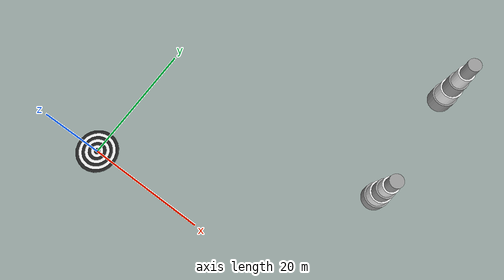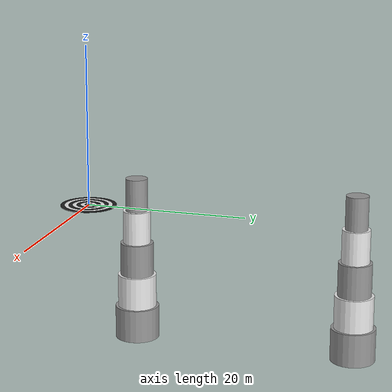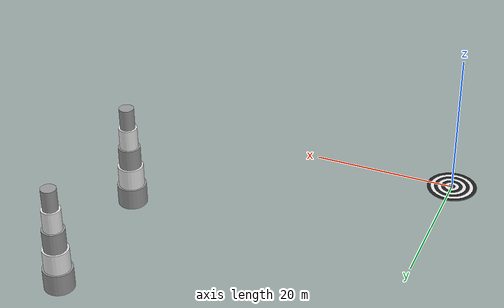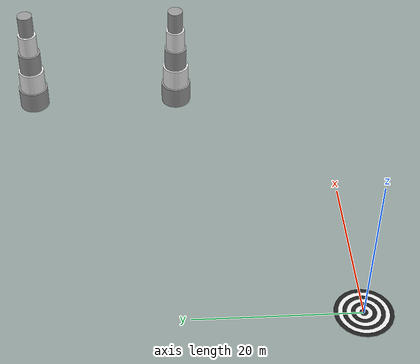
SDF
<sdf version="1.4">
 <world name="fw_playground">
  <model name="bulls_eye">
   <static>true</static>
   <link name="link">
    <visual name="bulls_eye_r1">
     <cast_shadows>false</cast_shadows>
     <geometry><cylinder><radius>0.5</radius><length>0.12</length></cylinder></geometry>
     <material>
      <script><uri>file://media/materials/scripts/gazebo.material</uri><name>Gazebo/Black</name></script>
     </material>
    </visual>
    <visual name="bulls_eye_r2">
     <cast_shadows>false</cast_shadows>
     <geometry><cylinder><radius>1</radius><length>0.11</length></cylinder></geometry>
     <material>
      <script><uri>file://media/materials/scripts/gazebo.material</uri><name>Gazebo/White</name></script>
     </material>
    </visual>
    <visual name="bulls_eye_r3">
     <cast_shadows>false</cast_shadows>
     <geometry><cylinder><radius>1.5</radius><length>0.1</length></cylinder></geometry>
     <material>
      <script><uri>file://media/materials/scripts/gazebo.material</uri><name>Gazebo/Black</name></script>
     </material>
    </visual>
    <visual name="bulls_eye_r4">
     <cast_shadows>false</cast_shadows>
     <geometry><cylinder><radius>2</radius><length>0.09</length></cylinder></geometry>
     <material>
      <script><uri>file://media/materials/scripts/gazebo.material</uri><name>Gazebo/White</name></script>
     </material>
    </visual>
    <visual name="bulls_eye_r5">
     <cast_shadows>false</cast_shadows>
     <geometry><cylinder><radius>2.5</radius><length>0.08</length></cylinder></geometry>
     <material>
      <script><uri>file://media/materials/scripts/gazebo.material</uri><name>Gazebo/Black</name></script>
     </material>
    </visual>
    <visual name="bulls_eye_r6">
     <cast_shadows>false</cast_shadows>
     <geometry><cylinder><radius>3</radius><length>0.07</length></cylinder></geometry>
     <material>
      <script><uri>file://media/materials/scripts/gazebo.material</uri><name>Gazebo/White</name></script>
     </material>
    </visual>
    <visual name="bulls_eye_r7">
     <cast_shadows>false</cast_shadows>
     <geometry><cylinder><radius>3.5</radius><length>0.06</length></cylinder></geometry>
     <material>
      <script><uri>file://media/materials/scripts/gazebo.material</uri><name>Gazebo/Black</name></script>
     </material>
    </visual>
   </link>
  </model>
  <model name="pylon3">
   <static>true</static>
   <link name="pylon">
    <pose>40 20 0 0 0 0</pose>
    <visual name="v1">
     <pose>0 0 1.5 0 0 0</pose>
     <geometry><cylinder><radius>2</radius><length>3</length></cylinder></geometry>
     <material>
      <script><uri>file://media/materials/scripts/gazebo.material</uri><name>Gazebo/Grey</name></script>
     </material>
    </visual>
    <collision name="c1">
     <pose>0 0 1.5 0 0 0</pose>
     <geometry><cylinder><radius>2</radius><length>3</length></cylinder></geometry>
    </collision>
    <visual name="v2">
     <pose>0 0 4.5 0 0 0</pose>
     <geometry><cylinder><radius>1.75</radius><length>3</length></cylinder></geometry>
     <material>
      <script><uri>file://media/materials/scripts/gazebo.material</uri><name>Gazebo/White</name></script>
     </material>
    </visual>
    <collision name="c2">
     <pose>0 0 4.5 0 0 0</pose>
     <geometry><cylinder><radius>1.75</radius><length>3</length></cylinder></geometry>
    </collision>
    <visual name="v3">
     <pose>0 0 7.5 0 0 0</pose>
     <geometry><cylinder><radius>1.5</radius><length>3</length></cylinder></geometry>
     <material>
      <script><uri>file://media/materials/scripts/gazebo.material</uri><name>Gazebo/Grey</name></script>
     </material>
    </visual>
    <collision name="c3">
     <pose>0 0 7.5 0 0 0</pose>
     <geometry><cylinder><radius>1.5</radius><length>3</length></cylinder></geometry>
    </collision>
    <visual name="v4">
     <pose>0 0 10.5 0 0 0</pose>
     <geometry><cylinder><radius>1.25</radius><length>3</length></cylinder></geometry>
     <material>
      <script><uri>file://media/materials/scripts/gazebo.material</uri><name>Gazebo/White</name></script>
     </material>
    </visual>
    <collision name="c4">
     <pose>0 0 10.5 0 0 0</pose>
     <geometry><cylinder><radius>1.25</radius><length>3</length></cylinder></geometry>
    </collision>
    <visual name="v5">
     <pose>0 0 13.5 0 0 0</pose>
     <geometry><cylinder><radius>1</radius><length>3</length></cylinder></geometry>
     <material>
      <script><uri>file://media/materials/scripts/gazebo.material</uri><name>Gazebo/Grey</name></script>
     </material>
    </visual>
    <collision name="c5">
     <pose>0 0 13.5 0 0 0</pose>
     <geometry><cylinder><radius>1</radius><length>3</length></cylinder></geometry>
    </collision>
   </link>
  </model>
  <model name="pylon4">
   <static>true</static>
   <link name="pylon">
    <pose>40 40 0 0 0 0</pose>
    <visual name="v1">
     <pose>0 0 1.5 0 0 0</pose>
     <geometry><cylinder><radius>2</radius><length>3</length></cylinder></geometry>
     <material>
      <script><uri>file://media/materials/scripts/gazebo.material</uri><name>Gazebo/Grey</name></script>
     </material>
    </visual>
    <collision name="c1">
     <pose>0 0 1.5 0 0 0</pose>
     <geometry><cylinder><radius>2</radius><length>3</length></cylinder></geometry>
    </collision>
    <visual name="v2">
     <pose>0 0 4.5 0 0 0</pose>
     <geometry><cylinder><radius>1.75</radius><length>3</length></cylinder></geometry>
     <material>
      <script><uri>file://media/materials/scripts/gazebo.material</uri><name>Gazebo/White</name></script>
     </material>
    </visual>
    <collision name="c2">
     <pose>0 0 4.5 0 0 0</pose>
     <geometry><cylinder><radius>1.75</radius><length>3</length></cylinder></geometry>
    </collision>
    <visual name="v3">
     <pose>0 0 7.5 0 0 0</pose>
     <geometry><cylinder><radius>1.5</radius><length>3</length></cylinder></geometry>
     <material>
      <script><uri>file://media/materials/scripts/gazebo.material</uri><name>Gazebo/Grey</name></script>
     </material>
    </visual>
    <collision name="c3">
     <pose>0 0 7.5 0 0 0</pose>
     <geometry><cylinder><radius>1.5</radius><length>3</length></cylinder></geometry>
    </collision>
    <visual name="v4">
     <pose>0 0 10.5 0 0 0</pose>
     <geometry><cylinder><radius>1.25</radius><length>3</length></cylinder></geometry>
     <material>
      <script><uri>file://media/materials/scripts/gazebo.material</uri><name>Gazebo/White</name></script>
     </material>
    </visual>
    <collision name="c4">
     <pose>0 0 10.5 0 0 0</pose>
     <geometry><cylinder><radius>1.25</radius><length>3</length></cylinder></geometry>
    </collision>
    <visual name="v5">
     <pose>0 0 13.5 0 0 0</pose>
     <geometry><cylinder><radius>1</radius><length>3</length></cylinder></geometry>
     <material>
      <script><uri>file://media/materials/scripts/gazebo.material</uri><name>Gazebo/Grey</name></script>
     </material>
    </visual>
    <collision name="c5">
     <pose>0 0 13.5 0 0 0</pose>
     <geometry><cylinder><radius>1</radius><length>3</length></cylinder></geometry>
    </collision>
   </link>
  </model>
 </world>
</sdf>
